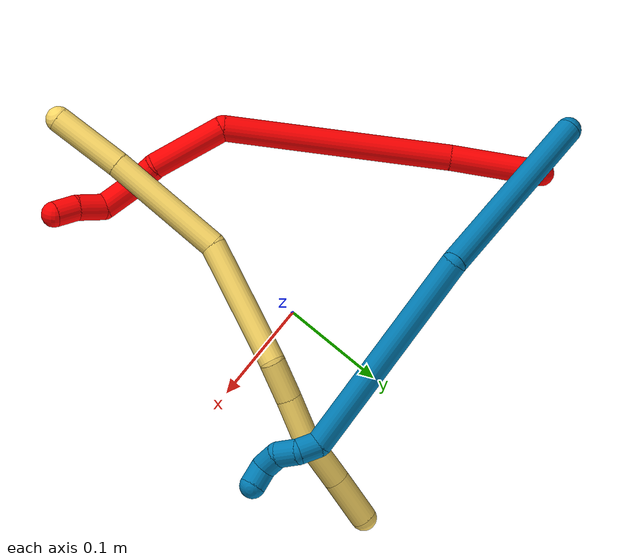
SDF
<sdf version="1.7">
 <world name="default">
  <model name="photoneo_s_sensor">
   <static>1</static>
   <pose>0 0 2 1.57079 1.57079 3.14159</pose>
   <link name="link">
    <inertial><mass>0.1</mass></inertial>
    <sensor name="sensor" type="depth">
     <update_rate>30</update_rate>
     <camera>
      <horizontal_fov>1.22</horizontal_fov>
      <image><width>1920</width><height>1200</height><format>B8G8R8</format></image>
      <clip><near>0.1</near><far>4</far></clip>
      <depth_camera><output>points</output></depth_camera>
     </camera>
     <plugin name="camera_plugin" filename="libgazebo_ros_depth_camera.so">
      <baseline>0.2</baseline>
      <alwaysOn>1</alwaysOn>
      <updateRate>0.0</updateRate>
      <cameraName>camera_ir</cameraName>
      <imageTopicName>/camera/color/image_raw</imageTopicName>
      <cameraInfoTopicName>/camera/color/camera_info</cameraInfoTopicName>
      <depthImageTopicName>/camera/depth/image_raw</depthImageTopicName>
      <depthImageCameraInfoTopicName>/camera/depth/camera_info</depthImageCameraInfoTopicName>
      <pointCloudTopicName>/camera/depth/points</pointCloudTopicName>
      <frameName>fr_optical</frameName>
      <pointCloudCutoff>0.1</pointCloudCutoff>
      <pointCloudCutoffMax>2.0</pointCloudCutoffMax>
      <distortionK1>0</distortionK1>
      <distortionK2>0</distortionK2>
      <distortionK3>0</distortionK3>
      <distortionT1>0</distortionT1>
      <distortionT2>0</distortionT2>
      <CxPrime>0</CxPrime>
      <Cx>0</Cx>
      <Cy>0</Cy>
      <focalLength>0</focalLength>
      <hackBaseline>0</hackBaseline>
     </plugin>
    </sensor>
   </link>
  </model>
  <model name="bin">
   <static>1</static>
   <link name="bottom">
    <collision name="collision-bottom">
     <pose>0 0 -0.01 0 -0 0</pose>
     <geometry><box><size>0.8 0.6 0.02</size></box></geometry>
     <surface>
      <friction><ode><mu>100</mu><mu2>100</mu2></ode></friction>
      <contact><collide_bitmask>65535</collide_bitmask></contact>
     </surface>
    </collision>
   </link>
   <link name="west_wall">
    <collision name="collision-west_wall">
     <pose>-0.41 0 0.1 0 -0 0</pose>
     <geometry><box><size>0.02 0.6 0.2</size></box></geometry>
     <surface>
      <friction><ode><mu>100</mu><mu2>100</mu2></ode></friction>
      <contact><collide_bitmask>65535</collide_bitmask></contact>
     </surface>
    </collision>
   </link>
   <link name="east_wall">
    <collision name="collision-east_wall">
     <pose>0.41 0 0.1 0 -0 0</pose>
     <geometry><box><size>0.02 0.6 0.2</size></box></geometry>
     <surface>
      <friction><ode><mu>100</mu><mu2>100</mu2></ode></friction>
      <contact><collide_bitmask>65535</collide_bitmask></contact>
     </surface>
    </collision>
   </link>
   <link name="south_wall">
    <collision name="collision-south_wall">
     <pose>0 -0.31 0.1 0 -0 0</pose>
     <geometry><box><size>0.8 0.02 0.2</size></box></geometry>
     <surface>
      <friction><ode><mu>100</mu><mu2>100</mu2></ode></friction>
      <contact><collide_bitmask>65535</collide_bitmask></contact>
     </surface>
    </collision>
   </link>
   <link name="north_wall">
    <collision name="collision-north_wall">
     <pose>0 0.31 0.1 0 -0 0</pose>
     <geometry><box><size>0.8 0.02 0.2</size></box></geometry>
     <surface>
      <friction><ode><mu>100</mu><mu2>100</mu2></ode></friction>
      <contact><collide_bitmask>65535</collide_bitmask></contact>
     </surface>
    </collision>
   </link>
  </model>
  <model name="2">
   <static>0</static>
   <link name="2">
    <collision name="collision-cylinder-e_1_1_4">
     <pose>0.029168 -0.032869 0.005252 1.41236 0.719556 0.620894</pose>
     <geometry><cylinder><radius>0.0125</radius><length>0.088514</length></cylinder></geometry>
     <surface>
      <friction><ode><mu>1.16</mu><mu2>1.16</mu2><slip1>0</slip1><slip2>0</slip2></ode></friction>
      <contact><ode><kp>1e+06</kp><kd>1</kd><max_vel>0</max_vel><min_depth>0.001</min_depth></ode></contact>
     </surface>
    </collision>
    <visual name="visual-cylinder-e_1_1_4">
     <pose>0.029168 -0.032869 0.005252 1.41236 0.719556 0.620894</pose>
     <geometry><cylinder><radius>0.0125</radius><length>0.088514</length></cylinder></geometry>
     <material><ambient>1 0 0 1</ambient></material>
    </visual>
    <collision name="collision-cylinder-e_2_4_5">
     <pose>0.137964 -0.14024 0.023628 1.39642 0.811017 0.691612</pose>
     <geometry><cylinder><radius>0.0125</radius><length>0.219669</length></cylinder></geometry>
     <surface>
      <friction><ode><mu>1.16</mu><mu2>1.16</mu2><slip1>0</slip1><slip2>0</slip2></ode></friction>
      <contact><ode><kp>1e+06</kp><kd>1</kd><max_vel>0</max_vel><min_depth>0.001</min_depth></ode></contact>
     </surface>
    </collision>
    <visual name="visual-cylinder-e_2_4_5">
     <pose>0.137964 -0.14024 0.023628 1.39642 0.811017 0.691612</pose>
     <geometry><cylinder><radius>0.0125</radius><length>0.219669</length></cylinder></geometry>
     <material><ambient>1 0 0 1</ambient></material>
    </visual>
    <collision name="collision-cylinder-e_3_5_6">
     <pose>0.243292 -0.23414 0.017694 2.34737 0.757141 1.51786</pose>
     <geometry><cylinder><radius>0.0125</radius><length>0.074833</length></cylinder></geometry>
     <surface>
      <friction><ode><mu>1.16</mu><mu2>1.16</mu2><slip1>0</slip1><slip2>0</slip2></ode></friction>
      <contact><ode><kp>1e+06</kp><kd>1</kd><max_vel>0</max_vel><min_depth>0.001</min_depth></ode></contact>
     </surface>
    </collision>
    <visual name="visual-cylinder-e_3_5_6">
     <pose>0.243292 -0.23414 0.017694 2.34737 0.757141 1.51786</pose>
     <geometry><cylinder><radius>0.0125</radius><length>0.074833</length></cylinder></geometry>
     <material><ambient>1 0 0 1</ambient></material>
    </visual>
    <collision name="collision-cylinder-e_4_6_7">
     <pose>0.276233 -0.261464 -0.012864 2.53814 0.478361 1.3292</pose>
     <geometry><cylinder><radius>0.0125</radius><length>0.031465</length></cylinder></geometry>
     <surface>
      <friction><ode><mu>1.16</mu><mu2>1.16</mu2><slip1>0</slip1><slip2>0</slip2></ode></friction>
      <contact><ode><kp>1e+06</kp><kd>1</kd><max_vel>0</max_vel><min_depth>0.001</min_depth></ode></contact>
     </surface>
    </collision>
    <visual name="visual-cylinder-e_4_6_7">
     <pose>0.276233 -0.261464 -0.012864 2.53814 0.478361 1.3292</pose>
     <geometry><cylinder><radius>0.0125</radius><length>0.031465</length></cylinder></geometry>
     <material><ambient>1 0 0 1</ambient></material>
    </visual>
    <collision name="collision-cylinder-e_5_7_8">
     <pose>0.297199 -0.274221 -0.032709 2.61683 0.958367 2.18742</pose>
     <geometry><cylinder><radius>0.0125</radius><length>0.033546</length></cylinder></geometry>
     <surface>
      <friction><ode><mu>1.16</mu><mu2>1.16</mu2><slip1>0</slip1><slip2>0</slip2></ode></friction>
      <contact><ode><kp>1e+06</kp><kd>1</kd><max_vel>0</max_vel><min_depth>0.001</min_depth></ode></contact>
     </surface>
    </collision>
    <visual name="visual-cylinder-e_5_7_8">
     <pose>0.297199 -0.274221 -0.032709 2.61683 0.958367 2.18742</pose>
     <geometry><cylinder><radius>0.0125</radius><length>0.033546</length></cylinder></geometry>
     <material><ambient>1 0 0 1</ambient></material>
    </visual>
    <collision name="collision-cylinder-e_6_8_9">
     <pose>0.323832 -0.284407 -0.039395 1.27049 1.16104 0.900756</pose>
     <geometry><cylinder><radius>0.0125</radius><length>0.028146</length></cylinder></geometry>
     <surface>
      <friction><ode><mu>1.16</mu><mu2>1.16</mu2><slip1>0</slip1><slip2>0</slip2></ode></friction>
      <contact><ode><kp>1e+06</kp><kd>1</kd><max_vel>0</max_vel><min_depth>0.001</min_depth></ode></contact>
     </surface>
    </collision>
    <visual name="visual-cylinder-e_6_8_9">
     <pose>0.323832 -0.284407 -0.039395 1.27049 1.16104 0.900756</pose>
     <geometry><cylinder><radius>0.0125</radius><length>0.028146</length></cylinder></geometry>
     <material><ambient>1 0 0 1</ambient></material>
    </visual>
    <collision name="collision-cylinder-e_7_9_2">
     <pose>0.348218 -0.292795 -0.038732 1.88796 1.29955 1.61876</pose>
     <geometry><cylinder><radius>0.0125</radius><length>0.023828</length></cylinder></geometry>
     <surface>
      <friction><ode><mu>1.16</mu><mu2>1.16</mu2><slip1>0</slip1><slip2>0</slip2></ode></friction>
      <contact><ode><kp>1e+06</kp><kd>1</kd><max_vel>0</max_vel><min_depth>0.001</min_depth></ode></contact>
     </surface>
    </collision>
    <visual name="visual-cylinder-e_7_9_2">
     <pose>0.348218 -0.292795 -0.038732 1.88796 1.29955 1.61876</pose>
     <geometry><cylinder><radius>0.0125</radius><length>0.023828</length></cylinder></geometry>
     <material><ambient>1 0 0 1</ambient></material>
    </visual>
    <collision name="collision-sphere-2">
     <pose>0.359697 -0.295828 -0.039728 0 -0 0</pose>
     <geometry><sphere><radius>0.0125</radius></sphere></geometry>
     <surface>
      <friction><ode><mu>1.16</mu><mu2>1.16</mu2><slip1>0</slip1><slip2>0</slip2></ode></friction>
      <contact><ode><kp>1e+06</kp><kd>1</kd><max_vel>0</max_vel><min_depth>0.001</min_depth></ode></contact>
     </surface>
    </collision>
    <visual name="visual-sphere-2">
     <pose>0.359697 -0.295828 -0.039728 0 -0 0</pose>
     <geometry><sphere><radius>0.0125</radius></sphere></geometry>
     <material><ambient>1 0 0 1</ambient></material>
    </visual>
    <collision name="collision-sphere-9">
     <pose>0.33674 -0.289763 -0.037736 0 -0 0</pose>
     <geometry><sphere><radius>0.0125</radius></sphere></geometry>
     <surface>
      <friction><ode><mu>1.16</mu><mu2>1.16</mu2><slip1>0</slip1><slip2>0</slip2></ode></friction>
      <contact><ode><kp>1e+06</kp><kd>1</kd><max_vel>0</max_vel><min_depth>0.001</min_depth></ode></contact>
     </surface>
    </collision>
    <visual name="visual-sphere-9">
     <pose>0.33674 -0.289763 -0.037736 0 -0 0</pose>
     <geometry><sphere><radius>0.0125</radius></sphere></geometry>
     <material><ambient>1 0 0 1</ambient></material>
    </visual>
    <collision name="collision-sphere-4">
     <pose>0.058335 -0.065737 0.010503 0 -0 0</pose>
     <geometry><sphere><radius>0.0125</radius></sphere></geometry>
     <surface>
      <friction><ode><mu>1.16</mu><mu2>1.16</mu2><slip1>0</slip1><slip2>0</slip2></ode></friction>
      <contact><ode><kp>1e+06</kp><kd>1</kd><max_vel>0</max_vel><min_depth>0.001</min_depth></ode></contact>
     </surface>
    </collision>
    <visual name="visual-sphere-4">
     <pose>0.058335 -0.065737 0.010503 0 -0 0</pose>
     <geometry><sphere><radius>0.0125</radius></sphere></geometry>
     <material><ambient>1 0 0 1</ambient></material>
    </visual>
    <collision name="collision-sphere-1">
     <geometry><sphere><radius>0.0125</radius></sphere></geometry>
     <surface>
      <friction><ode><mu>1.16</mu><mu2>1.16</mu2><slip1>0</slip1><slip2>0</slip2></ode></friction>
      <contact><ode><kp>1e+06</kp><kd>1</kd><max_vel>0</max_vel><min_depth>0.001</min_depth></ode></contact>
     </surface>
    </collision>
    <visual name="visual-sphere-1">
     <geometry><sphere><radius>0.0125</radius></sphere></geometry>
     <material><ambient>1 0 0 1</ambient></material>
    </visual>
    <collision name="collision-sphere-8">
     <pose>0.310924 -0.279051 -0.041053 0 -0 0</pose>
     <geometry><sphere><radius>0.0125</radius></sphere></geometry>
     <surface>
      <friction><ode><mu>1.16</mu><mu2>1.16</mu2><slip1>0</slip1><slip2>0</slip2></ode></friction>
      <contact><ode><kp>1e+06</kp><kd>1</kd><max_vel>0</max_vel><min_depth>0.001</min_depth></ode></contact>
     </surface>
    </collision>
    <visual name="visual-sphere-8">
     <pose>0.310924 -0.279051 -0.041053 0 -0 0</pose>
     <geometry><sphere><radius>0.0125</radius></sphere></geometry>
     <material><ambient>1 0 0 1</ambient></material>
    </visual>
    <collision name="collision-sphere-5">
     <pose>0.217592 -0.214742 0.036753 0 -0 0</pose>
     <geometry><sphere><radius>0.0125</radius></sphere></geometry>
     <surface>
      <friction><ode><mu>1.16</mu><mu2>1.16</mu2><slip1>0</slip1><slip2>0</slip2></ode></friction>
      <contact><ode><kp>1e+06</kp><kd>1</kd><max_vel>0</max_vel><min_depth>0.001</min_depth></ode></contact>
     </surface>
    </collision>
    <visual name="visual-sphere-5">
     <pose>0.217592 -0.214742 0.036753 0 -0 0</pose>
     <geometry><sphere><radius>0.0125</radius></sphere></geometry>
     <material><ambient>1 0 0 1</ambient></material>
    </visual>
    <collision name="collision-sphere-6">
     <pose>0.268991 -0.253538 -0.001364 0 -0 0</pose>
     <geometry><sphere><radius>0.0125</radius></sphere></geometry>
     <surface>
      <friction><ode><mu>1.16</mu><mu2>1.16</mu2><slip1>0</slip1><slip2>0</slip2></ode></friction>
      <contact><ode><kp>1e+06</kp><kd>1</kd><max_vel>0</max_vel><min_depth>0.001</min_depth></ode></contact>
     </surface>
    </collision>
    <visual name="visual-sphere-6">
     <pose>0.268991 -0.253538 -0.001364 0 -0 0</pose>
     <geometry><sphere><radius>0.0125</radius></sphere></geometry>
     <material><ambient>1 0 0 1</ambient></material>
    </visual>
    <collision name="collision-sphere-7">
     <pose>0.283475 -0.26939 -0.024364 0 -0 0</pose>
     <geometry><sphere><radius>0.0125</radius></sphere></geometry>
     <surface>
      <friction><ode><mu>1.16</mu><mu2>1.16</mu2><slip1>0</slip1><slip2>0</slip2></ode></friction>
      <contact><ode><kp>1e+06</kp><kd>1</kd><max_vel>0</max_vel><min_depth>0.001</min_depth></ode></contact>
     </surface>
    </collision>
    <visual name="visual-sphere-7">
     <pose>0.283475 -0.26939 -0.024364 0 -0 0</pose>
     <geometry><sphere><radius>0.0125</radius></sphere></geometry>
     <material><ambient>1 0 0 1</ambient></material>
    </visual>
    <inertial>
     <pose>0.174335 -0.167289 0.006891 0 -0 0</pose>
     <mass>0.5</mass>
     <inertia>
      <ixx>0.000993</ixx>
      <ixy>0</ixy>
      <ixz>0</ixz>
      <iyy>0.001012</iyy>
      <iyz>0</iyz>
      <izz>-5.1e-05</izz>
     </inertia>
    </inertial>
   </link>
   <pose>-0.253836 0.100349 0.011498 0.919549 -0.679528 -0.478778</pose>
  </model>
  <model name="5">
   <static>0</static>
   <link name="5">
    <collision name="collision-cylinder-e_1_1_4">
     <pose>-0.002044 0.026475 -0.024522 -2.31793 -0.056588 0.129401</pose>
     <geometry><cylinder><radius>0.0125</radius><length>0.072289</length></cylinder></geometry>
     <surface>
      <friction><ode><mu>1.16</mu><mu2>1.16</mu2><slip1>0</slip1><slip2>0</slip2></ode></friction>
      <contact><ode><kp>1e+06</kp><kd>1</kd><max_vel>0</max_vel><min_depth>0.001</min_depth></ode></contact>
     </surface>
    </collision>
    <visual name="visual-cylinder-e_1_1_4">
     <pose>-0.002044 0.026475 -0.024522 -2.31793 -0.056588 0.129401</pose>
     <geometry><cylinder><radius>0.0125</radius><length>0.072289</length></cylinder></geometry>
     <material><ambient>1 0.858824 0.4 1</ambient></material>
    </visual>
    <collision name="collision-cylinder-e_2_4_5">
     <pose>-0.005428 0.094706 -0.091757 -2.36751 -0.022423 0.055</pose>
     <geometry><cylinder><radius>0.0125</radius><length>0.119496</length></cylinder></geometry>
     <surface>
      <friction><ode><mu>1.16</mu><mu2>1.16</mu2><slip1>0</slip1><slip2>0</slip2></ode></friction>
      <contact><ode><kp>1e+06</kp><kd>1</kd><max_vel>0</max_vel><min_depth>0.001</min_depth></ode></contact>
     </surface>
    </collision>
    <visual name="visual-cylinder-e_2_4_5">
     <pose>-0.005428 0.094706 -0.091757 -2.36751 -0.022423 0.055</pose>
     <geometry><cylinder><radius>0.0125</radius><length>0.119496</length></cylinder></geometry>
     <material><ambient>1 0.858824 0.4 1</ambient></material>
    </visual>
    <collision name="collision-cylinder-e_3_5_6">
     <pose>0.014172 0.170653 -0.181853 -2.51653 0.344107 -0.986844</pose>
     <geometry><cylinder><radius>0.0125</radius><length>0.124137</length></cylinder></geometry>
     <surface>
      <friction><ode><mu>1.16</mu><mu2>1.16</mu2><slip1>0</slip1><slip2>0</slip2></ode></friction>
      <contact><ode><kp>1e+06</kp><kd>1</kd><max_vel>0</max_vel><min_depth>0.001</min_depth></ode></contact>
     </surface>
    </collision>
    <visual name="visual-cylinder-e_3_5_6">
     <pose>0.014172 0.170653 -0.181853 -2.51653 0.344107 -0.986844</pose>
     <geometry><cylinder><radius>0.0125</radius><length>0.124137</length></cylinder></geometry>
     <material><ambient>1 0.858824 0.4 1</ambient></material>
    </visual>
    <collision name="collision-cylinder-e_4_6_7">
     <pose>0.039259 0.209813 -0.247576 -2.877 0.214908 -1.36234</pose>
     <geometry><cylinder><radius>0.0125</radius><length>0.038899</length></cylinder></geometry>
     <surface>
      <friction><ode><mu>1.16</mu><mu2>1.16</mu2><slip1>0</slip1><slip2>0</slip2></ode></friction>
      <contact><ode><kp>1e+06</kp><kd>1</kd><max_vel>0</max_vel><min_depth>0.001</min_depth></ode></contact>
     </surface>
    </collision>
    <visual name="visual-cylinder-e_4_6_7">
     <pose>0.039259 0.209813 -0.247576 -2.877 0.214908 -1.36234</pose>
     <geometry><cylinder><radius>0.0125</radius><length>0.038899</length></cylinder></geometry>
     <material><ambient>1 0.858824 0.4 1</ambient></material>
    </visual>
    <collision name="collision-cylinder-e_5_7_8">
     <pose>0.048782 0.220743 -0.284807 -2.83593 0.264996 -1.42659</pose>
     <geometry><cylinder><radius>0.0125</radius><length>0.04105</length></cylinder></geometry>
     <surface>
      <friction><ode><mu>1.16</mu><mu2>1.16</mu2><slip1>0</slip1><slip2>0</slip2></ode></friction>
      <contact><ode><kp>1e+06</kp><kd>1</kd><max_vel>0</max_vel><min_depth>0.001</min_depth></ode></contact>
     </surface>
    </collision>
    <visual name="visual-cylinder-e_5_7_8">
     <pose>0.048782 0.220743 -0.284807 -2.83593 0.264996 -1.42659</pose>
     <geometry><cylinder><radius>0.0125</radius><length>0.04105</length></cylinder></geometry>
     <material><ambient>1 0.858824 0.4 1</ambient></material>
    </visual>
    <collision name="collision-cylinder-e_6_8_9">
     <pose>0.053412 0.232958 -0.330125 -2.90923 -0.027459 0.23422</pose>
     <geometry><cylinder><radius>0.0125</radius><length>0.054336</length></cylinder></geometry>
     <surface>
      <friction><ode><mu>1.16</mu><mu2>1.16</mu2><slip1>0</slip1><slip2>0</slip2></ode></friction>
      <contact><ode><kp>1e+06</kp><kd>1</kd><max_vel>0</max_vel><min_depth>0.001</min_depth></ode></contact>
     </surface>
    </collision>
    <visual name="visual-cylinder-e_6_8_9">
     <pose>0.053412 0.232958 -0.330125 -2.90923 -0.027459 0.23422</pose>
     <geometry><cylinder><radius>0.0125</radius><length>0.054336</length></cylinder></geometry>
     <material><ambient>1 0.858824 0.4 1</ambient></material>
    </visual>
    <collision name="collision-cylinder-e_7_9_2">
     <pose>0.052469 0.245074 -0.380749 -2.90388 -0.007922 0.066317</pose>
     <geometry><cylinder><radius>0.0125</radius><length>0.049793</length></cylinder></geometry>
     <surface>
      <friction><ode><mu>1.16</mu><mu2>1.16</mu2><slip1>0</slip1><slip2>0</slip2></ode></friction>
      <contact><ode><kp>1e+06</kp><kd>1</kd><max_vel>0</max_vel><min_depth>0.001</min_depth></ode></contact>
     </surface>
    </collision>
    <visual name="visual-cylinder-e_7_9_2">
     <pose>0.052469 0.245074 -0.380749 -2.90388 -0.007922 0.066317</pose>
     <geometry><cylinder><radius>0.0125</radius><length>0.049793</length></cylinder></geometry>
     <material><ambient>1 0.858824 0.4 1</ambient></material>
    </visual>
    <collision name="collision-sphere-2">
     <pose>0.052271 0.250936 -0.404944 0 -0 0</pose>
     <geometry><sphere><radius>0.0125</radius></sphere></geometry>
     <surface>
      <friction><ode><mu>1.16</mu><mu2>1.16</mu2><slip1>0</slip1><slip2>0</slip2></ode></friction>
      <contact><ode><kp>1e+06</kp><kd>1</kd><max_vel>0</max_vel><min_depth>0.001</min_depth></ode></contact>
     </surface>
    </collision>
    <visual name="visual-sphere-2">
     <pose>0.052271 0.250936 -0.404944 0 -0 0</pose>
     <geometry><sphere><radius>0.0125</radius></sphere></geometry>
     <material><ambient>1 0.858824 0.4 1</ambient></material>
    </visual>
    <collision name="collision-sphere-9">
     <pose>0.052666 0.239211 -0.356553 0 -0 0</pose>
     <geometry><sphere><radius>0.0125</radius></sphere></geometry>
     <surface>
      <friction><ode><mu>1.16</mu><mu2>1.16</mu2><slip1>0</slip1><slip2>0</slip2></ode></friction>
      <contact><ode><kp>1e+06</kp><kd>1</kd><max_vel>0</max_vel><min_depth>0.001</min_depth></ode></contact>
     </surface>
    </collision>
    <visual name="visual-sphere-9">
     <pose>0.052666 0.239211 -0.356553 0 -0 0</pose>
     <geometry><sphere><radius>0.0125</radius></sphere></geometry>
     <material><ambient>1 0.858824 0.4 1</ambient></material>
    </visual>
    <collision name="collision-sphere-4">
     <pose>-0.004088 0.052949 -0.049044 0 -0 0</pose>
     <geometry><sphere><radius>0.0125</radius></sphere></geometry>
     <surface>
      <friction><ode><mu>1.16</mu><mu2>1.16</mu2><slip1>0</slip1><slip2>0</slip2></ode></friction>
      <contact><ode><kp>1e+06</kp><kd>1</kd><max_vel>0</max_vel><min_depth>0.001</min_depth></ode></contact>
     </surface>
    </collision>
    <visual name="visual-sphere-4">
     <pose>-0.004088 0.052949 -0.049044 0 -0 0</pose>
     <geometry><sphere><radius>0.0125</radius></sphere></geometry>
     <material><ambient>1 0.858824 0.4 1</ambient></material>
    </visual>
    <collision name="collision-sphere-1">
     <geometry><sphere><radius>0.0125</radius></sphere></geometry>
     <surface>
      <friction><ode><mu>1.16</mu><mu2>1.16</mu2><slip1>0</slip1><slip2>0</slip2></ode></friction>
      <contact><ode><kp>1e+06</kp><kd>1</kd><max_vel>0</max_vel><min_depth>0.001</min_depth></ode></contact>
     </surface>
    </collision>
    <visual name="visual-sphere-1">
     <geometry><sphere><radius>0.0125</radius></sphere></geometry>
     <material><ambient>1 0.858824 0.4 1</ambient></material>
    </visual>
    <collision name="collision-sphere-8">
     <pose>0.054158 0.226704 -0.303698 0 -0 0</pose>
     <geometry><sphere><radius>0.0125</radius></sphere></geometry>
     <surface>
      <friction><ode><mu>1.16</mu><mu2>1.16</mu2><slip1>0</slip1><slip2>0</slip2></ode></friction>
      <contact><ode><kp>1e+06</kp><kd>1</kd><max_vel>0</max_vel><min_depth>0.001</min_depth></ode></contact>
     </surface>
    </collision>
    <visual name="visual-sphere-8">
     <pose>0.054158 0.226704 -0.303698 0 -0 0</pose>
     <geometry><sphere><radius>0.0125</radius></sphere></geometry>
     <material><ambient>1 0.858824 0.4 1</ambient></material>
    </visual>
    <collision name="collision-sphere-5">
     <pose>-0.006768 0.136463 -0.13447 0 -0 0</pose>
     <geometry><sphere><radius>0.0125</radius></sphere></geometry>
     <surface>
      <friction><ode><mu>1.16</mu><mu2>1.16</mu2><slip1>0</slip1><slip2>0</slip2></ode></friction>
      <contact><ode><kp>1e+06</kp><kd>1</kd><max_vel>0</max_vel><min_depth>0.001</min_depth></ode></contact>
     </surface>
    </collision>
    <visual name="visual-sphere-5">
     <pose>-0.006768 0.136463 -0.13447 0 -0 0</pose>
     <geometry><sphere><radius>0.0125</radius></sphere></geometry>
     <material><ambient>1 0.858824 0.4 1</ambient></material>
    </visual>
    <collision name="collision-sphere-6">
     <pose>0.035111 0.204843 -0.229235 0 -0 0</pose>
     <geometry><sphere><radius>0.0125</radius></sphere></geometry>
     <surface>
      <friction><ode><mu>1.16</mu><mu2>1.16</mu2><slip1>0</slip1><slip2>0</slip2></ode></friction>
      <contact><ode><kp>1e+06</kp><kd>1</kd><max_vel>0</max_vel><min_depth>0.001</min_depth></ode></contact>
     </surface>
    </collision>
    <visual name="visual-sphere-6">
     <pose>0.035111 0.204843 -0.229235 0 -0 0</pose>
     <geometry><sphere><radius>0.0125</radius></sphere></geometry>
     <material><ambient>1 0.858824 0.4 1</ambient></material>
    </visual>
    <collision name="collision-sphere-7">
     <pose>0.043406 0.214782 -0.265917 0 -0 0</pose>
     <geometry><sphere><radius>0.0125</radius></sphere></geometry>
     <surface>
      <friction><ode><mu>1.16</mu><mu2>1.16</mu2><slip1>0</slip1><slip2>0</slip2></ode></friction>
      <contact><ode><kp>1e+06</kp><kd>1</kd><max_vel>0</max_vel><min_depth>0.001</min_depth></ode></contact>
     </surface>
    </collision>
    <visual name="visual-sphere-7">
     <pose>0.043406 0.214782 -0.265917 0 -0 0</pose>
     <geometry><sphere><radius>0.0125</radius></sphere></geometry>
     <material><ambient>1 0.858824 0.4 1</ambient></material>
    </visual>
    <inertial>
     <pose>0.020014 0.152998 -0.18706 0 -0 0</pose>
     <mass>0.5</mass>
     <inertia>
      <ixx>0.000174</ixx>
      <ixy>0</ixy>
      <ixz>0</ixz>
      <iyy>-0.000308</iyy>
      <iyz>0</iyz>
      <izz>-0.000313</izz>
     </inertia>
    </inertial>
   </link>
   <pose>-0.001898 -0.288501 0.038108 0.902317 -0.440451 -0.087615</pose>
  </model>
  <model name="9">
   <static>0</static>
   <link name="9">
    <collision name="collision-cylinder-e_1_1_4">
     <pose>0.056116 -0.005246 0.086061 0.060887 0.57697 0.018074</pose>
     <geometry><cylinder><radius>0.0125</radius><length>0.205748</length></cylinder></geometry>
     <surface>
      <friction><ode><mu>1.16</mu><mu2>1.16</mu2><slip1>0</slip1><slip2>0</slip2></ode></friction>
      <contact><ode><kp>1e+06</kp><kd>1</kd><max_vel>0</max_vel><min_depth>0.001</min_depth></ode></contact>
     </surface>
    </collision>
    <visual name="visual-cylinder-e_1_1_4">
     <pose>0.056116 -0.005246 0.086061 0.060887 0.57697 0.018074</pose>
     <geometry><cylinder><radius>0.0125</radius><length>0.205748</length></cylinder></geometry>
     <material><ambient>0 0.490196 0.709804 1</ambient></material>
    </visual>
    <collision name="collision-cylinder-e_2_4_5">
     <pose>0.212969 -0.006668 0.204465 -0.117719 1.2581 -0.085706</pose>
     <geometry><cylinder><radius>0.0125</radius><length>0.21174</length></cylinder></geometry>
     <surface>
      <friction><ode><mu>1.16</mu><mu2>1.16</mu2><slip1>0</slip1><slip2>0</slip2></ode></friction>
      <contact><ode><kp>1e+06</kp><kd>1</kd><max_vel>0</max_vel><min_depth>0.001</min_depth></ode></contact>
     </surface>
    </collision>
    <visual name="visual-cylinder-e_2_4_5">
     <pose>0.212969 -0.006668 0.204465 -0.117719 1.2581 -0.085706</pose>
     <geometry><cylinder><radius>0.0125</radius><length>0.21174</length></cylinder></geometry>
     <material><ambient>0 0.490196 0.709804 1</ambient></material>
    </visual>
    <collision name="collision-cylinder-e_3_5_6">
     <pose>0.321233 -0.008126 0.241261 0.870393 0.828233 0.403151</pose>
     <geometry><cylinder><radius>0.0125</radius><length>0.020437</length></cylinder></geometry>
     <surface>
      <friction><ode><mu>1.16</mu><mu2>1.16</mu2><slip1>0</slip1><slip2>0</slip2></ode></friction>
      <contact><ode><kp>1e+06</kp><kd>1</kd><max_vel>0</max_vel><min_depth>0.001</min_depth></ode></contact>
     </surface>
    </collision>
    <visual name="visual-cylinder-e_3_5_6">
     <pose>0.321233 -0.008126 0.241261 0.870393 0.828233 0.403151</pose>
     <geometry><cylinder><radius>0.0125</radius><length>0.020437</length></cylinder></geometry>
     <material><ambient>0 0.490196 0.709804 1</ambient></material>
    </visual>
    <collision name="collision-cylinder-e_4_6_7">
     <pose>0.336939 -0.01993 0.245048 1.6725 0.895076 0.977063</pose>
     <geometry><cylinder><radius>0.0125</radius><length>0.020963</length></cylinder></geometry>
     <surface>
      <friction><ode><mu>1.16</mu><mu2>1.16</mu2><slip1>0</slip1><slip2>0</slip2></ode></friction>
      <contact><ode><kp>1e+06</kp><kd>1</kd><max_vel>0</max_vel><min_depth>0.001</min_depth></ode></contact>
     </surface>
    </collision>
    <visual name="visual-cylinder-e_4_6_7">
     <pose>0.336939 -0.01993 0.245048 1.6725 0.895076 0.977063</pose>
     <geometry><cylinder><radius>0.0125</radius><length>0.020963</length></cylinder></geometry>
     <material><ambient>0 0.490196 0.709804 1</ambient></material>
    </visual>
    <collision name="collision-cylinder-e_5_7_8">
     <pose>0.35534 -0.027851 0.243129 2.30186 1.38908 2.15767</pose>
     <geometry><cylinder><radius>0.0125</radius><length>0.020788</length></cylinder></geometry>
     <surface>
      <friction><ode><mu>1.16</mu><mu2>1.16</mu2><slip1>0</slip1><slip2>0</slip2></ode></friction>
      <contact><ode><kp>1e+06</kp><kd>1</kd><max_vel>0</max_vel><min_depth>0.001</min_depth></ode></contact>
     </surface>
    </collision>
    <visual name="visual-cylinder-e_5_7_8">
     <pose>0.35534 -0.027851 0.243129 2.30186 1.38908 2.15767</pose>
     <geometry><cylinder><radius>0.0125</radius><length>0.020788</length></cylinder></geometry>
     <material><ambient>0 0.490196 0.709804 1</ambient></material>
    </visual>
    <collision name="collision-cylinder-e_6_8_2">
     <pose>0.374223 -0.027995 0.247043 -0.23798 1.02002 -0.133552</pose>
     <geometry><cylinder><radius>0.0125</radius><length>0.020325</length></cylinder></geometry>
     <surface>
      <friction><ode><mu>1.16</mu><mu2>1.16</mu2><slip1>0</slip1><slip2>0</slip2></ode></friction>
      <contact><ode><kp>1e+06</kp><kd>1</kd><max_vel>0</max_vel><min_depth>0.001</min_depth></ode></contact>
     </surface>
    </collision>
    <visual name="visual-cylinder-e_6_8_2">
     <pose>0.374223 -0.027995 0.247043 -0.23798 1.02002 -0.133552</pose>
     <geometry><cylinder><radius>0.0125</radius><length>0.020325</length></cylinder></geometry>
     <material><ambient>0 0.490196 0.709804 1</ambient></material>
    </visual>
    <collision name="collision-sphere-2">
     <pose>0.382882 -0.026741 0.252212 0 -0 0</pose>
     <geometry><sphere><radius>0.0125</radius></sphere></geometry>
     <surface>
      <friction><ode><mu>1.16</mu><mu2>1.16</mu2><slip1>0</slip1><slip2>0</slip2></ode></friction>
      <contact><ode><kp>1e+06</kp><kd>1</kd><max_vel>0</max_vel><min_depth>0.001</min_depth></ode></contact>
     </surface>
    </collision>
    <visual name="visual-sphere-2">
     <pose>0.382882 -0.026741 0.252212 0 -0 0</pose>
     <geometry><sphere><radius>0.0125</radius></sphere></geometry>
     <material><ambient>0 0.490196 0.709804 1</ambient></material>
    </visual>
    <collision name="collision-sphere-4">
     <pose>0.112233 -0.010493 0.172122 0 -0 0</pose>
     <geometry><sphere><radius>0.0125</radius></sphere></geometry>
     <surface>
      <friction><ode><mu>1.16</mu><mu2>1.16</mu2><slip1>0</slip1><slip2>0</slip2></ode></friction>
      <contact><ode><kp>1e+06</kp><kd>1</kd><max_vel>0</max_vel><min_depth>0.001</min_depth></ode></contact>
     </surface>
    </collision>
    <visual name="visual-sphere-4">
     <pose>0.112233 -0.010493 0.172122 0 -0 0</pose>
     <geometry><sphere><radius>0.0125</radius></sphere></geometry>
     <material><ambient>0 0.490196 0.709804 1</ambient></material>
    </visual>
    <collision name="collision-sphere-1">
     <geometry><sphere><radius>0.0125</radius></sphere></geometry>
     <surface>
      <friction><ode><mu>1.16</mu><mu2>1.16</mu2><slip1>0</slip1><slip2>0</slip2></ode></friction>
      <contact><ode><kp>1e+06</kp><kd>1</kd><max_vel>0</max_vel><min_depth>0.001</min_depth></ode></contact>
     </surface>
    </collision>
    <visual name="visual-sphere-1">
     <geometry><sphere><radius>0.0125</radius></sphere></geometry>
     <material><ambient>0 0.490196 0.709804 1</ambient></material>
    </visual>
    <collision name="collision-sphere-8">
     <pose>0.365563 -0.029249 0.241875 0 -0 0</pose>
     <geometry><sphere><radius>0.0125</radius></sphere></geometry>
     <surface>
      <friction><ode><mu>1.16</mu><mu2>1.16</mu2><slip1>0</slip1><slip2>0</slip2></ode></friction>
      <contact><ode><kp>1e+06</kp><kd>1</kd><max_vel>0</max_vel><min_depth>0.001</min_depth></ode></contact>
     </surface>
    </collision>
    <visual name="visual-sphere-8">
     <pose>0.365563 -0.029249 0.241875 0 -0 0</pose>
     <geometry><sphere><radius>0.0125</radius></sphere></geometry>
     <material><ambient>0 0.490196 0.709804 1</ambient></material>
    </visual>
    <collision name="collision-sphere-5">
     <pose>0.313704 -0.002843 0.236807 0 -0 0</pose>
     <geometry><sphere><radius>0.0125</radius></sphere></geometry>
     <surface>
      <friction><ode><mu>1.16</mu><mu2>1.16</mu2><slip1>0</slip1><slip2>0</slip2></ode></friction>
      <contact><ode><kp>1e+06</kp><kd>1</kd><max_vel>0</max_vel><min_depth>0.001</min_depth></ode></contact>
     </surface>
    </collision>
    <visual name="visual-sphere-5">
     <pose>0.313704 -0.002843 0.236807 0 -0 0</pose>
     <geometry><sphere><radius>0.0125</radius></sphere></geometry>
     <material><ambient>0 0.490196 0.709804 1</ambient></material>
    </visual>
    <collision name="collision-sphere-6">
     <pose>0.328761 -0.013408 0.245714 0 -0 0</pose>
     <geometry><sphere><radius>0.0125</radius></sphere></geometry>
     <surface>
      <friction><ode><mu>1.16</mu><mu2>1.16</mu2><slip1>0</slip1><slip2>0</slip2></ode></friction>
      <contact><ode><kp>1e+06</kp><kd>1</kd><max_vel>0</max_vel><min_depth>0.001</min_depth></ode></contact>
     </surface>
    </collision>
    <visual name="visual-sphere-6">
     <pose>0.328761 -0.013408 0.245714 0 -0 0</pose>
     <geometry><sphere><radius>0.0125</radius></sphere></geometry>
     <material><ambient>0 0.490196 0.709804 1</ambient></material>
    </visual>
    <collision name="collision-sphere-7">
     <pose>0.345117 -0.026452 0.244383 0 -0 0</pose>
     <geometry><sphere><radius>0.0125</radius></sphere></geometry>
     <surface>
      <friction><ode><mu>1.16</mu><mu2>1.16</mu2><slip1>0</slip1><slip2>0</slip2></ode></friction>
      <contact><ode><kp>1e+06</kp><kd>1</kd><max_vel>0</max_vel><min_depth>0.001</min_depth></ode></contact>
     </surface>
    </collision>
    <visual name="visual-sphere-7">
     <pose>0.345117 -0.026452 0.244383 0 -0 0</pose>
     <geometry><sphere><radius>0.0125</radius></sphere></geometry>
     <material><ambient>0 0.490196 0.709804 1</ambient></material>
    </visual>
    <inertial>
     <pose>0.170522 -0.008446 0.162286 0 -0 0</pose>
     <mass>0.5</mass>
     <inertia>
      <ixx>0.000883</ixx>
      <ixy>0</ixy>
      <ixz>0</ixz>
      <iyy>0.001526</iyy>
      <iyz>0</iyz>
      <izz>-0.001136</izz>
     </inertia>
    </inertial>
   </link>
   <pose>-0.302354 0.094638 0.011498 -0.025659 0.419752 -0.000118</pose>
  </model>
 </world>
</sdf>
